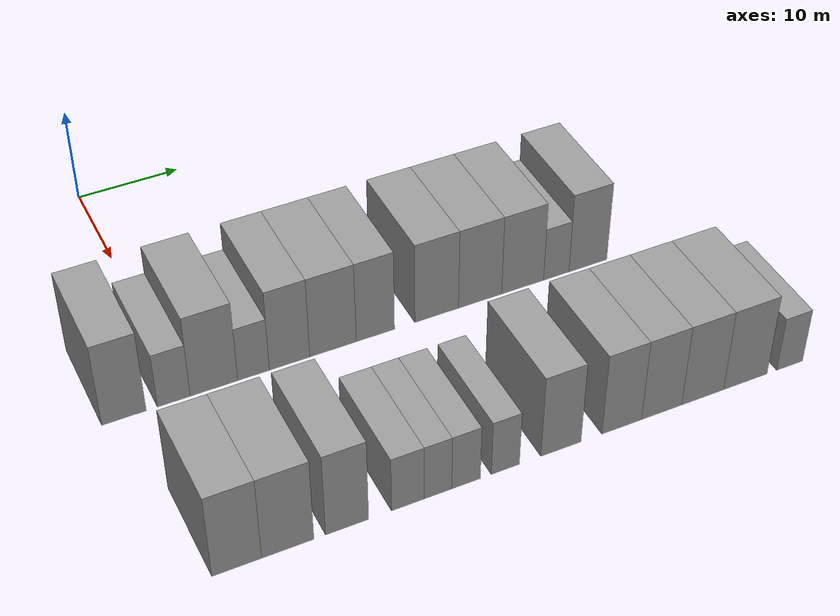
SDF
<sdf version="1.6">
 <world name="default">
  <model name="building_52">
   <static>1</static>
   <pose>25.0000 -5.4707 0 0.000000 0.000000 0.000000</pose>
   <link name="link">
    <pose>0 0 4.50 0 0 0</pose>
    <collision name="collision"><geometry><box><size>10.0000 3.9190 9.0000</size></box></geometry></collision>
    <visual name="visual">
     <cast_shadows>0</cast_shadows>
     <geometry><box><size>10.0000 3.9190 9.0000</size></box></geometry>
     <material>
      <script>
       <uri>model://grey_wall/materials/scripts</uri>
       <uri>model://grey_wall/materials/textures</uri>
       <name>vrc/grey_wall</name>
      </script>
     </material>
    </visual>
   </link>
  </model>
  <model name="building_53">
   <static>1</static>
   <pose>25.0000 -1.0420 0 0.000000 0.000000 0.000000</pose>
   <link name="link">
    <pose>0 0 3.00 0 0 0</pose>
    <collision name="collision"><geometry><box><size>10.0000 2.9385 6.0000</size></box></geometry></collision>
    <visual name="visual">
     <cast_shadows>0</cast_shadows>
     <geometry><box><size>10.0000 2.9385 6.0000</size></box></geometry>
     <material>
      <script>
       <uri>model://grey_wall/materials/scripts</uri>
       <uri>model://grey_wall/materials/textures</uri>
       <name>vrc/grey_wall</name>
      </script>
     </material>
    </visual>
   </link>
  </model>
  <model name="building_54">
   <static>1</static>
   <pose>25.0000 2.5894 0 0.000000 0.000000 0.000000</pose>
   <link name="link">
    <pose>0 0 4.50 0 0 0</pose>
    <collision name="collision"><geometry><box><size>10.0000 4.3243 9.0000</size></box></geometry></collision>
    <visual name="visual">
     <cast_shadows>0</cast_shadows>
     <geometry><box><size>10.0000 4.3243 9.0000</size></box></geometry>
     <material>
      <script>
       <uri>model://grey_wall/materials/scripts</uri>
       <uri>model://grey_wall/materials/textures</uri>
       <name>vrc/grey_wall</name>
      </script>
     </material>
    </visual>
   </link>
  </model>
  <model name="building_55">
   <static>1</static>
   <pose>25.0000 6.2147 0 0.000000 0.000000 0.000000</pose>
   <link name="link">
    <pose>0 0 3.00 0 0 0</pose>
    <collision name="collision"><geometry><box><size>10.0000 2.9261 6.0000</size></box></geometry></collision>
    <visual name="visual">
     <cast_shadows>0</cast_shadows>
     <geometry><box><size>10.0000 2.9261 6.0000</size></box></geometry>
     <material>
      <script>
       <uri>model://grey_wall/materials/scripts</uri>
       <uri>model://grey_wall/materials/textures</uri>
       <name>vrc/grey_wall</name>
      </script>
     </material>
    </visual>
   </link>
  </model>
  <model name="building_56">
   <static>1</static>
   <pose>25.0000 9.5672 0 0.000000 0.000000 0.000000</pose>
   <link name="link">
    <pose>0 0 4.50 0 0 0</pose>
    <collision name="collision"><geometry><box><size>10.0000 3.7789 9.0000</size></box></geometry></collision>
    <visual name="visual">
     <cast_shadows>0</cast_shadows>
     <geometry><box><size>10.0000 3.7789 9.0000</size></box></geometry>
     <material>
      <script>
       <uri>model://grey_wall/materials/scripts</uri>
       <uri>model://grey_wall/materials/textures</uri>
       <name>vrc/grey_wall</name>
      </script>
     </material>
    </visual>
   </link>
  </model>
  <model name="building_57">
   <static>1</static>
   <pose>25.0000 13.6727 0 0.000000 0.000000 0.000000</pose>
   <link name="link">
    <pose>0 0 4.50 0 0 0</pose>
    <collision name="collision"><geometry><box><size>10.0000 4.4319 9.0000</size></box></geometry></collision>
    <visual name="visual">
     <cast_shadows>0</cast_shadows>
     <geometry><box><size>10.0000 4.4319 9.0000</size></box></geometry>
     <material>
      <script>
       <uri>model://grey_wall/materials/scripts</uri>
       <uri>model://grey_wall/materials/textures</uri>
       <name>vrc/grey_wall</name>
      </script>
     </material>
    </visual>
   </link>
  </model>
  <model name="building_58">
   <static>1</static>
   <pose>25.0000 17.7466 0 0.000000 0.000000 0.000000</pose>
   <link name="link">
    <pose>0 0 4.50 0 0 0</pose>
    <collision name="collision"><geometry><box><size>10.0000 3.7159 9.0000</size></box></geometry></collision>
    <visual name="visual">
     <cast_shadows>0</cast_shadows>
     <geometry><box><size>10.0000 3.7159 9.0000</size></box></geometry>
     <material>
      <script>
       <uri>model://grey_wall/materials/scripts</uri>
       <uri>model://grey_wall/materials/textures</uri>
       <name>vrc/grey_wall</name>
      </script>
     </material>
    </visual>
   </link>
  </model>
  <model name="building_59">
   <static>1</static>
   <pose>25.0000 23.7717 0 0.000000 0.000000 0.000000</pose>
   <link name="link">
    <pose>0 0 4.50 0 0 0</pose>
    <collision name="collision"><geometry><box><size>10.0000 4.3344 9.0000</size></box></geometry></collision>
    <visual name="visual">
     <cast_shadows>0</cast_shadows>
     <geometry><box><size>10.0000 4.3344 9.0000</size></box></geometry>
     <material>
      <script>
       <uri>model://grey_wall/materials/scripts</uri>
       <uri>model://grey_wall/materials/textures</uri>
       <name>vrc/grey_wall</name>
      </script>
     </material>
    </visual>
   </link>
  </model>
  <model name="building_60">
   <static>1</static>
   <pose>25.0000 28.1252 0 0.000000 0.000000 0.000000</pose>
   <link name="link">
    <pose>0 0 4.50 0 0 0</pose>
    <collision name="collision"><geometry><box><size>10.0000 4.3726 9.0000</size></box></geometry></collision>
    <visual name="visual">
     <cast_shadows>0</cast_shadows>
     <geometry><box><size>10.0000 4.3726 9.0000</size></box></geometry>
     <material>
      <script>
       <uri>model://grey_wall/materials/scripts</uri>
       <uri>model://grey_wall/materials/textures</uri>
       <name>vrc/grey_wall</name>
      </script>
     </material>
    </visual>
   </link>
  </model>
  <model name="building_61">
   <static>1</static>
   <pose>25.0000 32.4729 0 0.000000 0.000000 0.000000</pose>
   <link name="link">
    <pose>0 0 4.50 0 0 0</pose>
    <collision name="collision"><geometry><box><size>10.0000 4.3227 9.0000</size></box></geometry></collision>
    <visual name="visual">
     <cast_shadows>0</cast_shadows>
     <geometry><box><size>10.0000 4.3227 9.0000</size></box></geometry>
     <material>
      <script>
       <uri>model://grey_wall/materials/scripts</uri>
       <uri>model://grey_wall/materials/textures</uri>
       <name>vrc/grey_wall</name>
      </script>
     </material>
    </visual>
   </link>
  </model>
  <model name="building_62">
   <static>1</static>
   <pose>25.0000 35.9554 0 0.000000 0.000000 0.000000</pose>
   <link name="link">
    <pose>0 0 3.00 0 0 0</pose>
    <collision name="collision"><geometry><box><size>10.0000 2.6424 6.0000</size></box></geometry></collision>
    <visual name="visual">
     <cast_shadows>0</cast_shadows>
     <geometry><box><size>10.0000 2.6424 6.0000</size></box></geometry>
     <material>
      <script>
       <uri>model://grey_wall/materials/scripts</uri>
       <uri>model://grey_wall/materials/textures</uri>
       <name>vrc/grey_wall</name>
      </script>
     </material>
    </visual>
   </link>
  </model>
  <model name="building_63">
   <static>1</static>
   <pose>25.0000 39.2814 0 0.000000 0.000000 0.000000</pose>
   <link name="link">
    <pose>0 0 4.50 0 0 0</pose>
    <collision name="collision"><geometry><box><size>10.0000 4.0095 9.0000</size></box></geometry></collision>
    <visual name="visual">
     <cast_shadows>0</cast_shadows>
     <geometry><box><size>10.0000 4.0095 9.0000</size></box></geometry>
     <material>
      <script>
       <uri>model://grey_wall/materials/scripts</uri>
       <uri>model://grey_wall/materials/textures</uri>
       <name>vrc/grey_wall</name>
      </script>
     </material>
    </visual>
   </link>
  </model>
  <model name="building_149">
   <static>1</static>
   <pose>44.0000 -2.7009 0 0.000000 0.000000 0.000000</pose>
   <link name="link">
    <pose>0 0 4.50 0 0 0</pose>
    <collision name="collision"><geometry><box><size>10.0000 4.1259 9.0000</size></box></geometry></collision>
    <visual name="visual">
     <cast_shadows>0</cast_shadows>
     <geometry><box><size>10.0000 4.1259 9.0000</size></box></geometry>
     <material>
      <script>
       <uri>model://grey_wall/materials/scripts</uri>
       <uri>model://grey_wall/materials/textures</uri>
       <name>vrc/grey_wall</name>
      </script>
     </material>
    </visual>
   </link>
  </model>
  <model name="building_150">
   <static>1</static>
   <pose>44.0000 1.5637 0 0.000000 0.000000 0.000000</pose>
   <link name="link">
    <pose>0 0 4.50 0 0 0</pose>
    <collision name="collision"><geometry><box><size>10.0000 4.4035 9.0000</size></box></geometry></collision>
    <visual name="visual">
     <cast_shadows>0</cast_shadows>
     <geometry><box><size>10.0000 4.4035 9.0000</size></box></geometry>
     <material>
      <script>
       <uri>model://grey_wall/materials/scripts</uri>
       <uri>model://grey_wall/materials/textures</uri>
       <name>vrc/grey_wall</name>
      </script>
     </material>
    </visual>
   </link>
  </model>
  <model name="building_151">
   <static>1</static>
   <pose>44.0000 6.6234 0 0.000000 0.000000 0.000000</pose>
   <link name="link">
    <pose>0 0 4.50 0 0 0</pose>
    <collision name="collision"><geometry><box><size>10.0000 3.7159 9.0000</size></box></geometry></collision>
    <visual name="visual">
     <cast_shadows>0</cast_shadows>
     <geometry><box><size>10.0000 3.7159 9.0000</size></box></geometry>
     <material>
      <script>
       <uri>model://grey_wall/materials/scripts</uri>
       <uri>model://grey_wall/materials/textures</uri>
       <name>vrc/grey_wall</name>
      </script>
     </material>
    </visual>
   </link>
  </model>
  <model name="building_152">
   <static>1</static>
   <pose>44.0000 11.9278 0 0.000000 0.000000 0.000000</pose>
   <link name="link">
    <pose>0 0 3.00 0 0 0</pose>
    <collision name="collision"><geometry><box><size>10.0000 2.8928 6.0000</size></box></geometry></collision>
    <visual name="visual">
     <cast_shadows>0</cast_shadows>
     <geometry><box><size>10.0000 2.8928 6.0000</size></box></geometry>
     <material>
      <script>
       <uri>model://grey_wall/materials/scripts</uri>
       <uri>model://grey_wall/materials/textures</uri>
       <name>vrc/grey_wall</name>
      </script>
     </material>
    </visual>
   </link>
  </model>
  <model name="building_153">
   <static>1</static>
   <pose>44.0000 14.6041 0 0.000000 0.000000 0.000000</pose>
   <link name="link">
    <pose>0 0 3.00 0 0 0</pose>
    <collision name="collision"><geometry><box><size>10.0000 2.4599 6.0000</size></box></geometry></collision>
    <visual name="visual">
     <cast_shadows>0</cast_shadows>
     <geometry><box><size>10.0000 2.4599 6.0000</size></box></geometry>
     <material>
      <script>
       <uri>model://grey_wall/materials/scripts</uri>
       <uri>model://grey_wall/materials/textures</uri>
       <name>vrc/grey_wall</name>
      </script>
     </material>
    </visual>
   </link>
  </model>
  <model name="building_154">
   <static>1</static>
   <pose>44.0000 17.1319 0 0.000000 0.000000 0.000000</pose>
   <link name="link">
    <pose>0 0 3.00 0 0 0</pose>
    <collision name="collision"><geometry><box><size>10.0000 2.5956 6.0000</size></box></geometry></collision>
    <visual name="visual">
     <cast_shadows>0</cast_shadows>
     <geometry><box><size>10.0000 2.5956 6.0000</size></box></geometry>
     <material>
      <script>
       <uri>model://grey_wall/materials/scripts</uri>
       <uri>model://grey_wall/materials/textures</uri>
       <name>vrc/grey_wall</name>
      </script>
     </material>
    </visual>
   </link>
  </model>
  <model name="building_155">
   <static>1</static>
   <pose>44.0000 20.7240 0 0.000000 0.000000 0.000000</pose>
   <link name="link">
    <pose>0 0 3.00 0 0 0</pose>
    <collision name="collision"><geometry><box><size>10.0000 2.5887 6.0000</size></box></geometry></collision>
    <visual name="visual">
     <cast_shadows>0</cast_shadows>
     <geometry><box><size>10.0000 2.5887 6.0000</size></box></geometry>
     <material>
      <script>
       <uri>model://grey_wall/materials/scripts</uri>
       <uri>model://grey_wall/materials/textures</uri>
       <name>vrc/grey_wall</name>
      </script>
     </material>
    </visual>
   </link>
  </model>
  <model name="building_156">
   <static>1</static>
   <pose>44.0000 25.9043 0 0.000000 0.000000 0.000000</pose>
   <link name="link">
    <pose>0 0 4.50 0 0 0</pose>
    <collision name="collision"><geometry><box><size>10.0000 3.7720 9.0000</size></box></geometry></collision>
    <visual name="visual">
     <cast_shadows>0</cast_shadows>
     <geometry><box><size>10.0000 3.7720 9.0000</size></box></geometry>
     <material>
      <script>
       <uri>model://grey_wall/materials/scripts</uri>
       <uri>model://grey_wall/materials/textures</uri>
       <name>vrc/grey_wall</name>
      </script>
     </material>
    </visual>
   </link>
  </model>
  <model name="building_157">
   <static>1</static>
   <pose>44.0000 31.7035 0 0.000000 0.000000 0.000000</pose>
   <link name="link">
    <pose>0 0 4.50 0 0 0</pose>
    <collision name="collision"><geometry><box><size>10.0000 3.8263 9.0000</size></box></geometry></collision>
    <visual name="visual">
     <cast_shadows>0</cast_shadows>
     <geometry><box><size>10.0000 3.8263 9.0000</size></box></geometry>
     <material>
      <script>
       <uri>model://grey_wall/materials/scripts</uri>
       <uri>model://grey_wall/materials/textures</uri>
       <name>vrc/grey_wall</name>
      </script>
     </material>
    </visual>
   </link>
  </model>
  <model name="building_158">
   <static>1</static>
   <pose>44.0000 35.5994 0 0.000000 0.000000 0.000000</pose>
   <link name="link">
    <pose>0 0 4.50 0 0 0</pose>
    <collision name="collision"><geometry><box><size>10.0000 3.9656 9.0000</size></box></geometry></collision>
    <visual name="visual">
     <cast_shadows>0</cast_shadows>
     <geometry><box><size>10.0000 3.9656 9.0000</size></box></geometry>
     <material>
      <script>
       <uri>model://grey_wall/materials/scripts</uri>
       <uri>model://grey_wall/materials/textures</uri>
       <name>vrc/grey_wall</name>
      </script>
     </material>
    </visual>
   </link>
  </model>
  <model name="building_159">
   <static>1</static>
   <pose>44.0000 39.6707 0 0.000000 0.000000 0.000000</pose>
   <link name="link">
    <pose>0 0 4.50 0 0 0</pose>
    <collision name="collision"><geometry><box><size>10.0000 4.1770 9.0000</size></box></geometry></collision>
    <visual name="visual">
     <cast_shadows>0</cast_shadows>
     <geometry><box><size>10.0000 4.1770 9.0000</size></box></geometry>
     <material>
      <script>
       <uri>model://grey_wall/materials/scripts</uri>
       <uri>model://grey_wall/materials/textures</uri>
       <name>vrc/grey_wall</name>
      </script>
     </material>
    </visual>
   </link>
  </model>
  <model name="building_160">
   <static>1</static>
   <pose>44.0000 43.9792 0 0.000000 0.000000 0.000000</pose>
   <link name="link">
    <pose>0 0 4.50 0 0 0</pose>
    <collision name="collision"><geometry><box><size>10.0000 4.4400 9.0000</size></box></geometry></collision>
    <visual name="visual">
     <cast_shadows>0</cast_shadows>
     <geometry><box><size>10.0000 4.4400 9.0000</size></box></geometry>
     <material>
      <script>
       <uri>model://grey_wall/materials/scripts</uri>
       <uri>model://grey_wall/materials/textures</uri>
       <name>vrc/grey_wall</name>
      </script>
     </material>
    </visual>
   </link>
  </model>
  <model name="building_161">
   <static>1</static>
   <pose>44.0000 48.5371 0 0.000000 0.000000 0.000000</pose>
   <link name="link">
    <pose>0 0 3.00 0 0 0</pose>
    <collision name="collision"><geometry><box><size>10.0000 2.6757 6.0000</size></box></geometry></collision>
    <visual name="visual">
     <cast_shadows>0</cast_shadows>
     <geometry><box><size>10.0000 2.6757 6.0000</size></box></geometry>
     <material>
      <script>
       <uri>model://grey_wall/materials/scripts</uri>
       <uri>model://grey_wall/materials/textures</uri>
       <name>vrc/grey_wall</name>
      </script>
     </material>
    </visual>
   </link>
  </model>
 </world>
</sdf>
